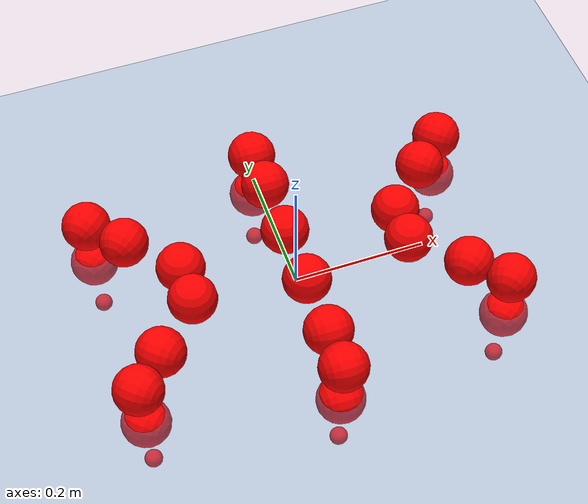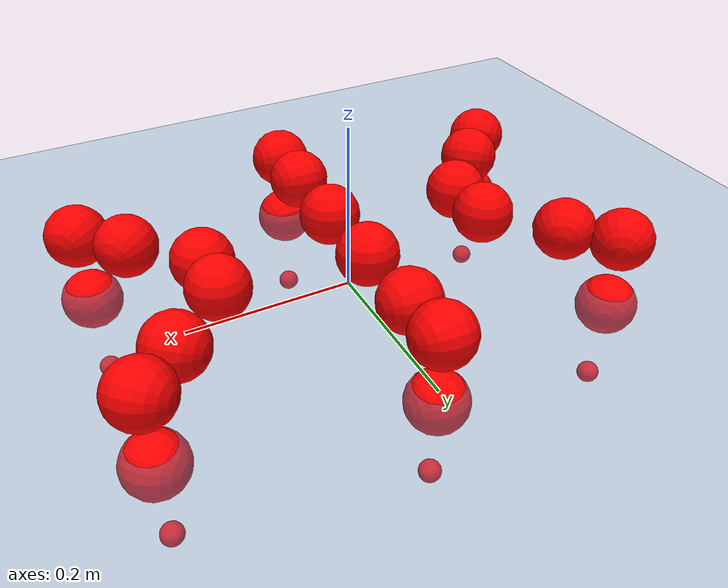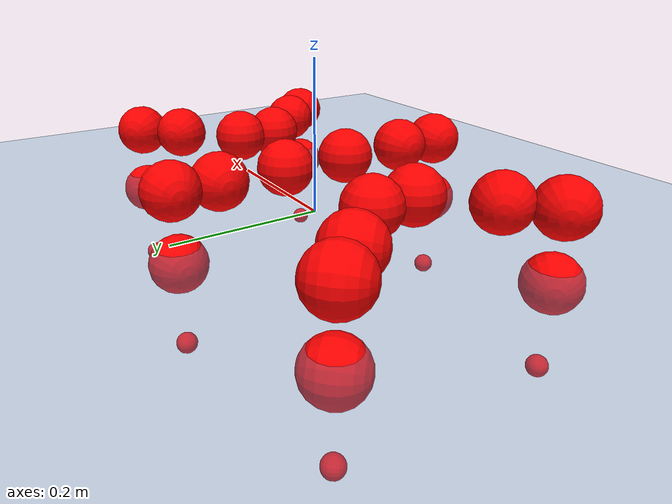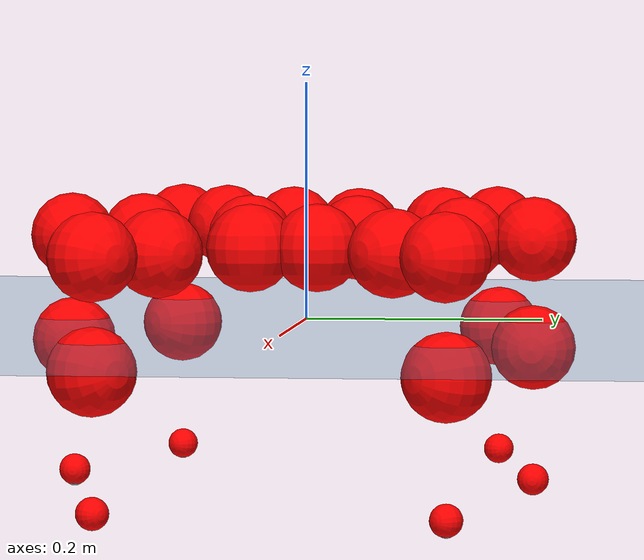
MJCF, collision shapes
<mujoco model="Golem">
  <compiler angle="radian" assetdir="assets" balanceinertia="true" inertiafromgeom="false"/>

  <option timestep="0.005" density="1.2" viscosity="2e-05"/>

  <size nkey="1"/>

  <visual>
    <quality shadowsize="8192"/>
    <map shadowclip="0.5"/>
  </visual>

  <default>
    <default class="/">
      <joint armature="0.01" damping="0.01" frictionloss="0.01"/>
      <geom contype="0" conaffinity="0" group="1" solref="-1000 -80"/>
      <site size="0.01 0.005 0.005" group="5"/>
      <general forcelimited="true" biastype="affine" gainprm="25" biasprm="0 -25 -0.5"/>
      <default class="visual">
        <geom type="mesh" group="2"/>
      </default>
      <default class="collision">
        <geom group="3"/>
      </default>
      <default class="foot">
        <geom size="0.01 0 0" condim="6" group="4" priority="1" solimp="0.015 1 0.01"/>
      </default>
      <default class="reward_collision_sphere">
        <geom group="5" rgba="1 0 0 1"/>
      </default>
    </default>
  </default>

  <asset>
    <texture type="skybox" colorspace="auto" name="//unnamed_texture_0" builtin="gradient" rgb1="0.95 0.95 0.95" rgb2="0.95 0.95 0.95" width="100" height="600"/>
    <texture type="2d" colorspace="auto" name="texplane" builtin="checker" rgb1="0.345 0.575 0.748" rgb2="0.345 0.575 0.748" markrgb="1 1 1" width="512" height="512"/>
    <material name="MatPlane" class="/" texture="texplane" texuniform="true" texrepeat="2 2" specular="0.9"/>
    <mesh name="body" class="/" file="body.stl" scale="0.001 0.001 0.001"/>
    <mesh name="coxa" class="/" file="coxa.stl" scale="0.001 0.001 0.001"/>
    <mesh name="femur" class="/" file="femur.stl" scale="0.001 0.001 0.001"/>
    <mesh name="tibia" class="/" file="tibia.stl" scale="0.001 0.001 0.001"/>
    <mesh name="tarsus" class="/" file="tarsus.stl" scale="0.001 0.001 0.001"/>
  </asset>

  <worldbody>
    <geom name="floor" class="/" size="100 100 0.125" type="plane" group="0" material="MatPlane"/>
    <light name="toplight_shadow" class="/" pos="0 0 5" dir="0.0990148 0.0990148 -0.990148" type="directional" ambient="0.04 0.04 0.04" diffuse="0.55 0.55 0.55" specular="0.12 0.12 0.12"/>
    <light name="toplight_fill" class="/" pos="0 0 5" dir="0.0990148 0.0990148 -0.990148" type="directional" castshadow="false" ambient="0.04 0.04 0.04" diffuse="0.3 0.3 0.3" specular="0.08 0.08 0.08"/>
    <body name="trunk" pos="3.2981e-05 -0.000468009 0.000863174" quat="1 0.000149883 3.45777e-05 0.000106937">
      <inertial pos="-0.000230744 0.000166821 -0.00367513" quat="1 -0.000399965 -0.000118524 -7.448e-05" mass="2.66261" diaginertia="0.0123146 0.000689384 0.0131646"/>
      <joint name="//unnamed_joint_0" type="free"/>
      <geom name="//unnamed_geom_1" class="/" pos="0 0 0.0676163" quat="1 0 0 0" type="mesh" rgba="0.9 0.9 0.9 1" mesh="body"/>
      <site name="imu" class="/" pos="0.134037 -0.00121747 0.110003" size="0.00893882"/>
      <camera name="track" class="/" pos="0 -1.16673 0" quat="0.707107 0.707107 0 0" mode="trackcom"/>
      <camera name="ego_camera" class="/" pos="0.135431 0 0.105651" quat="-0.5 -0.5 0.5 0.5"/>
      <body name="coxa_RR" pos="-0.184134 -0.0498067 0.0693316" quat="0.383084 -0.000262071 -6.16719e-06 -0.923713">
        <inertial pos="-0.000540893 -0.000100098 0.00184652" quat="0.999995 -0.00270984 -0.000742928 -0.00153065" mass="0.14231" diaginertia="0.0122125 0.000675018 0.0133156"/>
        <joint name="coxa_joint_RR" class="/" pos="0 0 0" axis="0.000691141 -0.00195988 -0.999998" range="-3.15011 3.13857" armature="0.00913359" damping="0.00713777" frictionloss="0.00878048"/>
        <geom name="//unnamed_geom_2" class="/" type="mesh" rgba="0.2 0.2 0.2 1" mesh="coxa"/>
        <geom name="//unnamed_geom_3" class="reward_collision_sphere" size="0.0357553" pos="-0.0312533 0 0"/>
        <body name="femur_RR" pos="0.0628476 0.00201286 -0.00115653" quat="0.499666 -0.500035 0.50009 0.500209">
          <inertial pos="0.000192805 0.00054269 -0.000881218" quat="0.99999 0.00393412 0.000153105 0.00203193" mass="0.142382" diaginertia="0.0121272 0.000681736 0.0131469"/>
          <joint name="femur_joint_RR" class="/" pos="0 0 0" axis="-0.000245598 0.000202627 -1" range="-3.14047 3.14024" armature="0.00882181" damping="0.00132426" frictionloss="0.00894445"/>
          <geom name="//unnamed_geom_4" class="/" type="mesh" rgba="0.9 0.9 0.9 1" mesh="femur"/>
          <geom name="//unnamed_geom_5" class="reward_collision_sphere" size="0.0357553"/>
          <body name="tibia_RR" pos="0.000876898 -0.0640806 0.00153125" quat="1.52708e-05 1 1.51646e-05 -6.278e-06">
            <inertial pos="-0.000225985 0.000622679 0.000387469" quat="1 6.65744e-05 1.52779e-05 8.47501e-05" mass="0.14444" diaginertia="0.0124249 0.00068076 0.0133014"/>
            <joint name="tibia_joint_RR" class="/" pos="0 0 0" axis="-4.70308e-05 -0.002264 0.999997" range="-3.13083 3.1476" armature="0.00937995" damping="0" frictionloss="0.00942969"/>
            <geom name="//unnamed_geom_6" class="/" type="mesh" rgba="0.2 0.2 0.2 1" mesh="tibia"/>
            <geom name="//unnamed_geom_7" class="reward_collision_sphere" size="0.0357553"/>
            <body name="tarsus_RR" pos="0.0908991 -0.000623225 -0.00148601" quat="1 0.000355252 4.64204e-05 0.000133076">
              <inertial pos="0.0612061 0.000107568 -0.000845846" quat="0.498311 0.497812 0.500938 0.502922" mass="0.142747" diaginertia="0.0123343 0.00067356 0.013329"/>
              <joint name="tarsus_joint_RR" class="/" pos="0 0 0" axis="-0.000376797 0.00266346 0.999996" stiffness="0.00024061" range="-3.12088 3.14031" armature="0.00890583" damping="0.00384275" frictionloss="0.0090594"/>
              <geom name="//unnamed_geom_8" class="/" type="mesh" rgba="0.9 0.9 0.9 1" mesh="tarsus"/>
              <geom name="foot_1" class="foot" size="0.00889743" pos="0.116679 0 0" quat="0 -0.707107 0 0.707107"/>
              <geom name="//unnamed_geom_10" class="reward_collision_sphere" size="0.0357553"/>
              <geom name="//unnamed_geom_11" class="reward_collision_sphere" size="0.0134082" pos="0.111991 0 0"/>
              <site name="foot_1" class="foot" pos="0.116679 0 0" quat="0 -0.707107 0 0.707107" size="0.00893882"/>
            </body>
          </body>
        </body>
      </body>
      <body name="coxa_RM" pos="0.00016009 -0.0784654 0.0682819" quat="0.70685 -5.46291e-06 -1.08278e-05 -0.707363">
        <inertial pos="0.000272538 0.000149083 0.00050507" quat="0.999991 -0.00091462 -0.00322091 -0.00263799" mass="0.145974" diaginertia="0.0123628 0.0006874 0.0132215"/>
        <joint name="coxa_joint_RM" class="/" pos="0 0 0" axis="-0.00234943 -0.0022654 -0.999995" range="-3.13659 3.15615" armature="0.00883423" damping="0.0107864" frictionloss="0.00856144"/>
        <geom name="//unnamed_geom_12" class="/" type="mesh" rgba="0.2 0.2 0.2 1" mesh="coxa"/>
        <geom name="//unnamed_geom_13" class="reward_collision_sphere" size="0.0357553" pos="-0.0312533 0 0"/>
        <body name="femur_RM" pos="0.0596417 -0.000709703 0.00107213" quat="0.500016 -0.499905 0.499955 0.500123">
          <inertial pos="0.00011656 -0.000981249 0.000246846" quat="0.999997 -0.00162323 0.00159692 0.000349658" mass="0.141045" diaginertia="0.0122747 0.000675788 0.0132795"/>
          <joint name="femur_joint_RM" class="/" pos="0 0 0" axis="0.000321791 -0.00082525 -1" range="-3.14658 3.12215" armature="0.00858199" damping="0.00513556" frictionloss="0.00897719"/>
          <geom name="//unnamed_geom_14" class="/" type="mesh" rgba="0.9 0.9 0.9 1" mesh="femur"/>
          <geom name="//unnamed_geom_15" class="reward_collision_sphere" size="0.0357553"/>
          <body name="tibia_RM" pos="-0.000222081 -0.0616968 -0.000610324" quat="0.000186789 1 -9.6587e-06 -9.22479e-05">
            <inertial pos="-0.000189297 -0.00104967 -0.000455797" quat="0.999997 0.00172114 0.000101277 -0.00180858" mass="0.143582" diaginertia="0.0123076 0.000675183 0.0133103"/>
            <joint name="tibia_joint_RM" class="/" pos="0 0 0" axis="-0.0012925 0.000549641 0.999999" stiffness="0.00016989" range="-3.15038 3.12287" armature="0.0087175" damping="0.0041964" frictionloss="0.0091012"/>
            <geom name="//unnamed_geom_16" class="/" type="mesh" rgba="0.2 0.2 0.2 1" mesh="tibia"/>
            <geom name="//unnamed_geom_17" class="reward_collision_sphere" size="0.0357553"/>
            <body name="tarsus_RM" pos="0.0891687 -0.000759602 0.00121811" quat="1 0.00019207 0.000315734 -0.000112747">
              <inertial pos="0.0627895 0.00065436 0.000459761" quat="0.499817 0.499928 0.500134 0.500121" mass="0.142426" diaginertia="0.0123662 0.000678589 0.0132396"/>
              <joint name="tarsus_joint_RM" class="/" pos="0 0 0" axis="0.00124396 0.000474229 0.999999" range="-3.14619 3.12855" armature="0.00926472" damping="0.00264582" frictionloss="0.0091266"/>
              <geom name="//unnamed_geom_18" class="/" type="mesh" rgba="0.9 0.9 0.9 1" mesh="tarsus"/>
              <geom name="foot_2" class="foot" size="0.00932803" pos="0.116679 0 0" quat="0 -0.707107 0 0.707107"/>
              <geom name="//unnamed_geom_20" class="reward_collision_sphere" size="0.0357553"/>
              <geom name="//unnamed_geom_21" class="reward_collision_sphere" size="0.0134082" pos="0.111991 0 0"/>
              <site name="foot_2" class="foot" pos="0.116679 0 0" quat="0 -0.707107 0 0.707107" size="0.00893882"/>
            </body>
          </body>
        </body>
      </body>
      <body name="coxa_RF" pos="0.184768 -0.0496413 0.067487" quat="0.92392 -1.32955e-05 -0.000123519 -0.382586">
        <inertial pos="-0.000312483 -0.00043695 0.000653732" quat="0.99999 0.000440531 0.0044275 0.000434214" mass="0.143625" diaginertia="0.0124501 0.000687986 0.0132928"/>
        <joint name="coxa_joint_RF" class="/" pos="0 0 0" axis="0.00186573 -0.000367675 -0.999998" range="-3.14158 3.1559" armature="0.00873419" damping="0.00959077" frictionloss="0.00900714"/>
        <geom name="//unnamed_geom_22" class="/" type="mesh" rgba="0.2 0.2 0.2 1" mesh="coxa"/>
        <geom name="//unnamed_geom_23" class="reward_collision_sphere" size="0.0357553" pos="-0.0312533 0 0"/>
        <body name="femur_RF" pos="0.0620164 0.000435801 -0.00109853" quat="0.500094 -0.499959 0.49993 0.500017">
          <inertial pos="0.000457898 -0.000125489 -0.000225831" quat="0.99999 -0.00198187 -0.0022567 0.00335513" mass="0.143314" diaginertia="0.0124183 0.00068141 0.0133179"/>
          <joint name="femur_joint_RF" class="/" pos="0 0 0" axis="0.00169365 -0.000997648 -0.999998" range="-3.15371 3.13479" armature="0.00893078" damping="0.00491143" frictionloss="0.00903077"/>
          <geom name="//unnamed_geom_24" class="/" type="mesh" rgba="0.9 0.9 0.9 1" mesh="femur"/>
          <geom name="//unnamed_geom_25" class="reward_collision_sphere" size="0.0357553"/>
          <body name="tibia_RF" pos="0.000744247 -0.0643643 -0.00045296" quat="0.000347266 1 3.7379e-06 6.67793e-05">
            <inertial pos="0.00021317 -2.05571e-05 0.000294957" quat="1 0.000252626 -7.31826e-05 0.000358499" mass="0.139815" diaginertia="0.0121539 0.000662737 0.0131069"/>
            <joint name="tibia_joint_RF" class="/" pos="0 0 0" axis="0.000238642 0.000306902 1" range="-3.12253 3.13268" armature="0.00879108" damping="0" frictionloss="0.0093477"/>
            <geom name="//unnamed_geom_26" class="/" type="mesh" rgba="0.2 0.2 0.2 1" mesh="tibia"/>
            <geom name="//unnamed_geom_27" class="reward_collision_sphere" size="0.0357553"/>
            <body name="tarsus_RF" pos="0.0904952 0.000638068 -3.59986e-05" quat="1 -6.04879e-06 7.41005e-06 -1.31927e-05">
              <inertial pos="0.0621407 0.000633867 -8.56925e-05" quat="0.500642 0.499183 0.499389 0.500784" mass="0.143679" diaginertia="0.012505 0.000684284 0.0133591"/>
              <joint name="tarsus_joint_RF" class="/" pos="0 0 0" axis="-0.00527675 0.00532258 0.999972" range="-3.1467 3.12813" armature="0.00881876" damping="0" frictionloss="0.00853068"/>
              <geom name="//unnamed_geom_28" class="/" type="mesh" rgba="0.9 0.9 0.9 1" mesh="tarsus"/>
              <geom name="foot_3" class="foot" size="0.00876973" pos="0.116679 0 0" quat="0 -0.707107 0 0.707107"/>
              <geom name="//unnamed_geom_30" class="reward_collision_sphere" size="0.0357553"/>
              <geom name="//unnamed_geom_31" class="reward_collision_sphere" size="0.0134082" pos="0.111991 0 0"/>
              <site name="foot_3" class="foot" pos="0.116679 0 0" quat="0 -0.707107 0 0.707107" size="0.00893882"/>
            </body>
          </body>
        </body>
      </body>
      <body name="coxa_LR" pos="-0.1846 0.0522478 0.0680767" quat="0.3827 1.24466e-05 -1.59838e-05 0.923873">
        <inertial pos="0.00111424 -0.00057655 0.000700397" quat="0.999997 -0.00128882 0.00117103 0.00175527" mass="0.14428" diaginertia="0.0123518 0.000686796 0.0132344"/>
        <joint name="coxa_joint_LR" class="/" pos="0 0 0" axis="-2.80452e-05 0.000890764 -1" range="-3.12427 3.14253" armature="0.0089174" damping="0.00720543" frictionloss="0.008625"/>
        <geom name="//unnamed_geom_32" class="/" type="mesh" rgba="0.2 0.2 0.2 1" mesh="coxa"/>
        <geom name="//unnamed_geom_33" class="reward_collision_sphere" size="0.0357553" pos="-0.0312533 0 0"/>
        <body name="femur_LR" pos="0.0635678 -0.00345759 -0.00151543" quat="0.499988 -0.500017 0.500009 0.499986">
          <inertial pos="-6.27352e-05 -0.000936922 -0.00040809" quat="0.999997 -0.00130342 0.00155964 0.00168608" mass="0.143487" diaginertia="0.0121228 0.000672375 0.0132402"/>
          <joint name="femur_joint_LR" class="/" pos="0 0 0" axis="-0.00212676 -0.0070665 0.999973" range="-3.1234 3.13025" armature="0.00939368" damping="0.00559823" frictionloss="0.00893457"/>
          <geom name="//unnamed_geom_34" class="/" type="mesh" rgba="0.9 0.9 0.9 1" mesh="femur"/>
          <geom name="//unnamed_geom_35" class="reward_collision_sphere" size="0.0357553"/>
          <body name="tibia_LR" pos="0.000455364 -0.0640934 -0.00157202" quat="-3.2468e-05 1 3.59389e-05 -5.56873e-05">
            <inertial pos="0.000688091 0.000169562 -0.000306181" quat="0.999993 0.000525735 -0.00162072 -0.00344741" mass="0.143813" diaginertia="0.0124134 0.000672943 0.0133274"/>
            <joint name="tibia_joint_LR" class="/" pos="0 0 0" axis="0.00287396 0.000237135 -0.999996" range="-3.12872 3.12566" armature="0.00913717" damping="0.00608126" frictionloss="0.00891466"/>
            <geom name="//unnamed_geom_36" class="/" type="mesh" rgba="0.2 0.2 0.2 1" mesh="tibia"/>
            <geom name="//unnamed_geom_37" class="reward_collision_sphere" size="0.0357553"/>
            <body name="tarsus_LR" pos="0.0915974 0.000715147 0.00153454" quat="1 4.99783e-05 4.10197e-05 1.17314e-05">
              <inertial pos="0.0632297 0.000549429 0.000686286" quat="0.49974 0.499833 0.500118 0.500309" mass="0.142661" diaginertia="0.0122894 0.000686042 0.0130422"/>
              <joint name="tarsus_joint_LR" class="/" pos="0 0 0" axis="-0.000156339 -0.000124271 -1" range="-3.1464 3.11998" armature="0.00894173" damping="0" frictionloss="0.00934733"/>
              <geom name="//unnamed_geom_38" class="/" type="mesh" rgba="0.9 0.9 0.9 1" mesh="tarsus"/>
              <geom name="foot_4" class="foot" size="0.00852687" pos="0.116679 0 0" quat="0.707107 0 -0.707107 0"/>
              <geom name="//unnamed_geom_40" class="reward_collision_sphere" size="0.0357553"/>
              <geom name="//unnamed_geom_41" class="reward_collision_sphere" size="0.0134082" pos="0.111991 0 0"/>
              <site name="foot_4" class="foot" pos="0.116679 0 0" quat="0.707107 0 -0.707107 0" size="0.00893882"/>
            </body>
          </body>
        </body>
      </body>
      <body name="coxa_LM" pos="-0.00153487 0.075388 0.0681427" quat="0.707107 -6.01149e-08 9.80376e-07 0.707107">
        <inertial pos="0.000229556 3.61284e-05 0.000399425" quat="0.999997 0.00042954 -0.0024672 6.083e-05" mass="0.144093" diaginertia="0.0121831 0.000675363 0.0132184"/>
        <joint name="coxa_joint_LM" class="/" pos="0 0 0" axis="0.00390353 0.0039542 -0.999985" range="-3.14825 3.14366" armature="0.00887153" damping="0.00679608" frictionloss="0.0089061"/>
        <geom name="//unnamed_geom_42" class="/" type="mesh" rgba="0.2 0.2 0.2 1" mesh="coxa"/>
        <geom name="//unnamed_geom_43" class="reward_collision_sphere" size="0.0357553" pos="-0.0312533 0 0"/>
        <body name="femur_LM" pos="0.0584518 0.000475946 -0.00115968" quat="0.500027 -0.499861 0.500109 0.500004">
          <inertial pos="0.000556848 -1.1039e-06 -0.000998904" quat="0.999995 0.00101791 0.00251821 -0.00138752" mass="0.145072" diaginertia="0.0123835 0.000684348 0.0132492"/>
          <joint name="femur_joint_LM" class="/" pos="0 0 0" axis="0.00722676 -7.76244e-05 0.999974" range="-3.1328 3.12296" armature="0.00931828" damping="0.00381005" frictionloss="0.00904295"/>
          <geom name="//unnamed_geom_44" class="/" type="mesh" rgba="0.9 0.9 0.9 1" mesh="femur"/>
          <geom name="//unnamed_geom_45" class="reward_collision_sphere" size="0.0357553"/>
          <body name="tibia_LM" pos="-0.000365735 -0.0595182 0.00153332" quat="-9.30983e-06 1 0.000204974 0.00040279">
            <inertial pos="-0.000854792 -0.0013437 -0.000159557" quat="0.999997 0.000685965 -0.00174222 -0.00150833" mass="0.139263" diaginertia="0.0121062 0.000666059 0.0129918"/>
            <joint name="tibia_joint_LM" class="/" pos="0 0 0" axis="0.000190906 -0.000173448 -1" range="-3.14645 3.15701" armature="0.0095122" damping="0" frictionloss="0.00877041"/>
            <geom name="//unnamed_geom_46" class="/" type="mesh" rgba="0.2 0.2 0.2 1" mesh="tibia"/>
            <geom name="//unnamed_geom_47" class="reward_collision_sphere" size="0.0357553"/>
            <body name="tarsus_LM" pos="0.0916678 -0.00055294 -0.00121541" quat="1 -2.50624e-05 2.39918e-05 -5.24677e-05">
              <inertial pos="0.0640937 -0.000160291 -3.90205e-05" quat="0.496983 0.498884 0.502201 0.501913" mass="0.140888" diaginertia="0.0120655 0.000656459 0.0130319"/>
              <joint name="tarsus_joint_LM" class="/" pos="0 0 0" axis="-0.0011289 0.00127632 -0.999999" range="-3.13672 3.13679" armature="0.00874245" damping="0.00508145" frictionloss="0.00928875"/>
              <geom name="//unnamed_geom_48" class="/" type="mesh" rgba="0.9 0.9 0.9 1" mesh="tarsus"/>
              <geom name="foot_5" class="foot" size="0.00872254" pos="0.116679 0 0" quat="0.707107 0 -0.707107 0"/>
              <geom name="//unnamed_geom_50" class="reward_collision_sphere" size="0.0357553"/>
              <geom name="//unnamed_geom_51" class="reward_collision_sphere" size="0.0134082" pos="0.111991 0 0"/>
              <site name="foot_5" class="foot" pos="0.116679 0 0" quat="0.707107 0 -0.707107 0" size="0.00893882"/>
            </body>
          </body>
        </body>
      </body>
      <body name="coxa_LF" pos="0.185545 0.0490774 0.0679883" quat="0.923874 -5.80357e-05 -0.000279192 0.382696">
        <inertial pos="-0.000175901 -0.000904828 0.000769238" quat="1 -0.00030385 -0.000119791 -0.000150331" mass="0.143568" diaginertia="0.0123346 0.000671181 0.0131465"/>
        <joint name="coxa_joint_LF" class="/" pos="0 0 0" axis="-0.00089104 0.00100233 -0.999999" range="-3.12048 3.14034" armature="0.00868116" damping="0.000471487" frictionloss="0.009198"/>
        <geom name="//unnamed_geom_52" class="/" type="mesh" rgba="0.2 0.2 0.2 1" mesh="coxa"/>
        <geom name="//unnamed_geom_53" class="reward_collision_sphere" size="0.0357553" pos="-0.0312533 0 0"/>
        <body name="femur_LF" pos="0.062386 0.00075657 -0.000580197" quat="0.500052 -0.50005 0.499771 0.500127">
          <inertial pos="-0.000132691 0.000848961 0.000109024" quat="1 0.000144095 -0.000248813 -0.00011238" mass="0.142843" diaginertia="0.0121818 0.000676282 0.0131709"/>
          <joint name="femur_joint_LF" class="/" pos="0 0 0" axis="-0.00150599 0.00187965 0.999997" range="-3.12345 3.12946" armature="0.00914197" damping="0" frictionloss="0.0089404"/>
          <geom name="//unnamed_geom_54" class="/" type="mesh" rgba="0.9 0.9 0.9 1" mesh="femur"/>
          <geom name="//unnamed_geom_55" class="reward_collision_sphere" size="0.0357553"/>
          <body name="tibia_LF" pos="0.000527509 -0.0639966 -0.000378095" quat="-0.000132594 1 -0.000404257 -0.000346471">
            <inertial pos="-0.000921431 0.000332193 0.00083179" quat="0.999999 0.000324141 -0.000157104 0.00105856" mass="0.140633" diaginertia="0.0123376 0.00067469 0.013255"/>
            <joint name="tibia_joint_LF" class="/" pos="0 0 0" axis="-0.00284733 0.00463484 -0.999985" range="-3.14398 3.14811" armature="0.00919149" damping="0" frictionloss="0.00902328"/>
            <geom name="//unnamed_geom_56" class="/" type="mesh" rgba="0.2 0.2 0.2 1" mesh="tibia"/>
            <geom name="//unnamed_geom_57" class="reward_collision_sphere" size="0.0357553"/>
            <body name="tarsus_LF" pos="0.0936214 0.00123137 -7.54731e-06" quat="1 9.59293e-05 -9.41157e-07 5.92359e-06">
              <inertial pos="0.0631655 0.000512576 -0.000143193" quat="0.498241 0.501221 0.496464 0.504041" mass="0.144077" diaginertia="0.0122552 0.000677501 0.0131672"/>
              <joint name="tarsus_joint_LF" class="/" pos="0 0 0" axis="0.000768276 0.0049881 -0.999987" stiffness="0.0293969" range="-3.15261 3.15125" armature="0.00893657" damping="0.0262387" frictionloss="0.00927804"/>
              <geom name="//unnamed_geom_58" class="/" type="mesh" rgba="0.9 0.9 0.9 1" mesh="tarsus"/>
              <geom name="foot_6" class="foot" size="0.00914041" pos="0.116679 0 0" quat="0.707107 0 -0.707107 0"/>
              <geom name="//unnamed_geom_60" class="reward_collision_sphere" size="0.0357553"/>
              <geom name="//unnamed_geom_61" class="reward_collision_sphere" size="0.0134082" pos="0.111991 0 0"/>
              <site name="foot_6" class="foot" pos="0.116679 0 0" quat="0.707107 0 -0.707107 0" size="0.00893882"/>
            </body>
          </body>
        </body>
      </body>
    </body>
  </worldbody>

  <contact>
    <pair class="/" geom1="floor" geom2="foot_1" name="//unnamed_contact_0"/>
    <pair class="/" geom1="floor" geom2="foot_2" name="//unnamed_contact_1"/>
    <pair class="/" geom1="floor" geom2="foot_3" name="//unnamed_contact_2"/>
    <pair class="/" geom1="floor" geom2="foot_4" name="//unnamed_contact_3"/>
    <pair class="/" geom1="floor" geom2="foot_5" name="//unnamed_contact_4"/>
    <pair class="/" geom1="floor" geom2="foot_6" name="//unnamed_contact_5"/>
  </contact>

  <actuator>
    <general name="coxa_joint_RR" class="/" joint="coxa_joint_RR" forcerange="-6.50052 6.50052" gainprm="21.722" biasprm="0 -21.722 -0.467482"/>
    <general name="femur_joint_RR" class="/" joint="femur_joint_RR" forcerange="-6.57987 6.57987" gainprm="21.722" biasprm="0 -21.722 -0.467482"/>
    <general name="tibia_joint_RR" class="/" joint="tibia_joint_RR" forcerange="-6.5332 6.5332" gainprm="21.722" biasprm="0 -21.722 -0.467482"/>
    <general name="tarsus_joint_RR" class="/" joint="tarsus_joint_RR" forcerange="-6.43466 6.43466" gainprm="21.722" biasprm="0 -21.722 -0.467482"/>
    <general name="coxa_joint_RM" class="/" joint="coxa_joint_RM" forcerange="-6.63992 6.63992" gainprm="21.722" biasprm="0 -21.722 -0.467482"/>
    <general name="femur_joint_RM" class="/" joint="femur_joint_RM" forcerange="-6.4443 6.4443" gainprm="21.722" biasprm="0 -21.722 -0.467482"/>
    <general name="tibia_joint_RM" class="/" joint="tibia_joint_RM" forcerange="-6.54689 6.54689" gainprm="21.722" biasprm="0 -21.722 -0.467482"/>
    <general name="tarsus_joint_RM" class="/" joint="tarsus_joint_RM" forcerange="-6.37572 6.37572" gainprm="21.722" biasprm="0 -21.722 -0.467482"/>
    <general name="coxa_joint_RF" class="/" joint="coxa_joint_RF" forcerange="-6.6213 6.6213" gainprm="21.722" biasprm="0 -21.722 -0.467482"/>
    <general name="femur_joint_RF" class="/" joint="femur_joint_RF" forcerange="-6.61347 6.61347" gainprm="21.722" biasprm="0 -21.722 -0.467482"/>
    <general name="tibia_joint_RF" class="/" joint="tibia_joint_RF" forcerange="-6.46252 6.46252" gainprm="21.722" biasprm="0 -21.722 -0.467482"/>
    <general name="tarsus_joint_RF" class="/" joint="tarsus_joint_RF" forcerange="-6.6385 6.6385" gainprm="21.722" biasprm="0 -21.722 -0.467482"/>
    <general name="coxa_joint_LR" class="/" joint="coxa_joint_LR" forcerange="-6.56904 6.56904" gainprm="21.722" biasprm="0 -21.722 -0.467482"/>
    <general name="femur_joint_LR" class="/" joint="femur_joint_LR" forcerange="-6.54191 6.54191" gainprm="21.722" biasprm="0 -21.722 -0.467482"/>
    <general name="tibia_joint_LR" class="/" joint="tibia_joint_LR" forcerange="-6.52877 6.52877" gainprm="21.722" biasprm="0 -21.722 -0.467482"/>
    <general name="tarsus_joint_LR" class="/" joint="tarsus_joint_LR" forcerange="-6.45439 6.45439" gainprm="21.722" biasprm="0 -21.722 -0.467482"/>
    <general name="coxa_joint_LM" class="/" joint="coxa_joint_LM" forcerange="-6.41146 6.41146" gainprm="21.722" biasprm="0 -21.722 -0.467482"/>
    <general name="femur_joint_LM" class="/" joint="femur_joint_LM" forcerange="-6.40399 6.40399" gainprm="21.722" biasprm="0 -21.722 -0.467482"/>
    <general name="tibia_joint_LM" class="/" joint="tibia_joint_LM" forcerange="-6.54244 6.54244" gainprm="21.722" biasprm="0 -21.722 -0.467482"/>
    <general name="tarsus_joint_LM" class="/" joint="tarsus_joint_LM" forcerange="-6.39742 6.39742" gainprm="21.722" biasprm="0 -21.722 -0.467482"/>
    <general name="coxa_joint_LF" class="/" joint="coxa_joint_LF" forcerange="-6.74173 6.74173" gainprm="21.722" biasprm="0 -21.722 -0.467482"/>
    <general name="femur_joint_LF" class="/" joint="femur_joint_LF" forcerange="-6.55012 6.55012" gainprm="21.722" biasprm="0 -21.722 -0.467482"/>
    <general name="tibia_joint_LF" class="/" joint="tibia_joint_LF" forcerange="-6.54111 6.54111" gainprm="21.722" biasprm="0 -21.722 -0.467482"/>
    <general name="tarsus_joint_LF" class="/" joint="tarsus_joint_LF" forcerange="-6.49016 6.49016" gainprm="21.722" biasprm="0 -21.722 -0.467482"/>
  </actuator>

  <sensor>
    <gyro site="imu" name="imu_angular_velocity"/>
    <velocimeter site="imu" name="imu_linear_velocity"/>
    <framelinvel objtype="site" objname="foot_1" name="foot_1_global_linear_velocity"/>
    <framelinvel objtype="site" objname="foot_2" name="foot_2_global_linear_velocity"/>
    <framelinvel objtype="site" objname="foot_3" name="foot_3_global_linear_velocity"/>
    <framelinvel objtype="site" objname="foot_4" name="foot_4_global_linear_velocity"/>
    <framelinvel objtype="site" objname="foot_5" name="foot_5_global_linear_velocity"/>
    <framelinvel objtype="site" objname="foot_6" name="foot_6_global_linear_velocity"/>
  </sensor>

  <keyframe>
    <key name="home" qpos="0 0 0.1457 1 0 0 0 0 0 0 0 0 0 0 0 0 0 0 0 0 0 0 0 0 0 0 0 0 0 0 0"/>
  </keyframe>
</mujoco>
